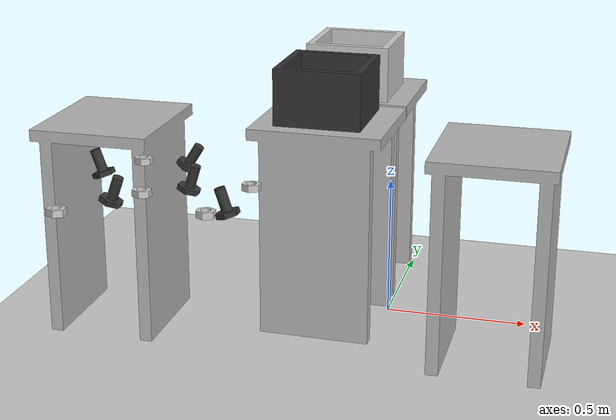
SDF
<sdf version="1.6">
 <world name="default">
  <light name="sun" type="directional">
   <pose>0 0 10 0 -0 0</pose>
   <diffuse>0.8 0.8 0.8 1</diffuse>
   <specular>0.1 0.1 0.1 1</specular>
   <attenuation>
    <range>1000</range>
    <constant>0.9</constant>
    <linear>0.01</linear>
    <quadratic>0.001</quadratic>
   </attenuation>
   <direction>-0.5 0.5 -1</direction>
  </light>
  <model name="ground_plane">
   <static>1</static>
   <link name="link">
    <collision name="collision">
     <geometry><plane><normal>0 0 1</normal><size>100 100</size></plane></geometry>
     <surface><friction><ode><mu>100</mu><mu2>50</mu2></ode></friction></surface>
    </collision>
    <visual name="visual">
     <cast_shadows>0</cast_shadows>
     <geometry><plane><normal>0 0 1</normal><size>100 100</size></plane></geometry>
     <material>
      <script><uri>file://media/materials/scripts/gazebo.material</uri><name>Gazebo/Grey</name></script>
     </material>
    </visual>
   </link>
  </model>
  <gravity>0 0 -9.8</gravity>
  <magnetic_field>6e-06 2.3e-05 -4.2e-05</magnetic_field>
  <atmosphere type="adiabatic"/>
  <physics name="default_physics" default="0" type="ode">
   <max_step_size>0.0005</max_step_size>
   <real_time_factor>1</real_time_factor>
   <real_time_update_rate>1000</real_time_update_rate>
  </physics>
  <scene><ambient>0.4 0.4 0.4 1</ambient><background>0.7 0.7 0.7 1</background><shadows>1</shadows></scene>
  <spherical_coordinates>
   <surface_model>EARTH_WGS84</surface_model>
   <latitude_deg>0</latitude_deg>
   <longitude_deg>0</longitude_deg>
   <elevation>0</elevation>
   <heading_deg>0</heading_deg>
  </spherical_coordinates>
  <model name="robot_stand_1">
   <static>1</static>
   <link name="link">
    <collision name="collision">
     <geometry><mesh><uri>model://robot_stand_v1/meshes/robot_stand_v1.dae</uri></mesh></geometry>
    </collision>
    <visual name="visual">
     <geometry><mesh><uri>model://robot_stand_v1/meshes/robot_stand_v1.dae</uri></mesh></geometry>
    </visual>
   </link>
   <pose>-0.192455 0.274857 0 0 0 -1.5736</pose>
  </model>
  <model name="robot_stand_0_clone">
   <static>1</static>
   <link name="link">
    <collision name="collision">
     <geometry><mesh><uri>model://robot_stand_v1/meshes/robot_stand_v1.dae</uri></mesh></geometry>
    </collision>
    <visual name="visual">
     <geometry><mesh><uri>model://robot_stand_v1/meshes/robot_stand_v1.dae</uri></mesh></geometry>
    </visual>
   </link>
   <pose>-0.912754 -0.326079 0 0 -0 0</pose>
  </model>
  <model name="robot_stand_0_clone_clone">
   <static>1</static>
   <link name="link">
    <collision name="collision">
     <geometry><mesh><uri>model://robot_stand_v1/meshes/robot_stand_v1.dae</uri></mesh></geometry>
    </collision>
    <visual name="visual">
     <geometry><mesh><uri>model://robot_stand_v1/meshes/robot_stand_v1.dae</uri></mesh></geometry>
    </visual>
   </link>
   <pose>-0.192455 -0.155606 0 0 0 -1.58626</pose>
  </model>
  <model name="robot_stand_0_clone_clone_clone">
   <static>1</static>
   <link name="link">
    <collision name="collision">
     <geometry><mesh><uri>model://robot_stand_v1/meshes/robot_stand_v1.dae</uri></mesh></geometry>
    </collision>
    <visual name="visual">
     <geometry><mesh><uri>model://robot_stand_v1/meshes/robot_stand_v1.dae</uri></mesh></geometry>
    </visual>
   </link>
   <pose>0.417197 -0.324665 0 0 -0 0</pose>
  </model>
  <model name="bin_1">
   <static>1</static>
   <link name="link">
    <inertial>
     <pose>0 0 0.3683 0 -0 0</pose>
     <mass>4.83076</mass>
     <inertia>
      <ixx>0.281534</ixx>
      <ixy>0</ixy>
      <ixz>0</ixz>
      <iyy>0.281534</iyy>
      <iyz>0</iyz>
      <izz>0.126223</izz>
     </inertia>
    </inertial>
    <visual name="visual">
     <geometry><mesh><uri>model://box_for_pro_white/meshes/box_for_pro.dae</uri></mesh></geometry>
     <material><ambient>0.8 0.8 0.8 1</ambient></material>
    </visual>
    <collision name="collision">
     <geometry><mesh><uri>model://box_for_pro_white/meshes/box_for_pro.dae</uri></mesh></geometry>
    </collision>
   </link>
   <pose>-0.189747 0.249853 0.85664 0 -0 0</pose>
  </model>
  <model name="bin_1_1">
   <static>1</static>
   <link name="link">
    <inertial>
     <pose>0 0 0.3683 0 -0 0</pose>
     <mass>4.83076</mass>
     <inertia>
      <ixx>0.281534</ixx>
      <ixy>0</ixy>
      <ixz>0</ixz>
      <iyy>0.281534</iyy>
      <iyz>0</iyz>
      <izz>0.126223</izz>
     </inertia>
    </inertial>
    <visual name="visual">
     <geometry><mesh><uri>model://box_for_pro/meshes/box_for_pro.dae</uri></mesh></geometry>
     <material><ambient>0.2 0.2 0.2 1</ambient></material>
    </visual>
    <collision name="collision">
     <geometry><mesh><uri>model://box_for_pro/meshes/box_for_pro.dae</uri></mesh></geometry>
    </collision>
   </link>
   <pose>-0.198861 -0.148758 0.856062 0 -0 0</pose>
  </model>
  <model name="bolt">
   <static>0</static>
   <link name="link">
    <inertial>
     <mass>0.2</mass>
     <inertia><ixx>1</ixx><ixy>0</ixy><ixz>0</ixz><iyy>1</iyy><iyz>0</iyz><izz>1</izz></inertia>
    </inertial>
    <visual name="visual">
     <geometry><mesh><uri>model://bolt/meshes/bolt.dae</uri></mesh></geometry>
     <material><ambient>0.2 0.2 0.2 1</ambient></material>
    </visual>
    <collision name="collision">
     <geometry><mesh><uri>model://bolt/meshes/bolt.dae</uri></mesh></geometry>
    </collision>
   </link>
   <pose>-0.195234 -1.24049 0.794577 1e-06 -0.319192 -0.003507</pose>
  </model>
  <model name="bolt_clone">
   <static>0</static>
   <link name="link">
    <inertial>
     <mass>0.2</mass>
     <inertia><ixx>1</ixx><ixy>0</ixy><ixz>0</ixz><iyy>1</iyy><iyz>0</iyz><izz>1</izz></inertia>
    </inertial>
    <visual name="visual">
     <geometry><mesh><uri>model://bolt/meshes/bolt.dae</uri></mesh></geometry>
     <material><ambient>0.2 0.2 0.2 1</ambient></material>
    </visual>
    <collision name="collision">
     <geometry><mesh><uri>model://bolt/meshes/bolt.dae</uri></mesh></geometry>
    </collision>
   </link>
   <pose>-0.650441 -1.00898 0.795124 1e-06 -0.341177 -0.003505</pose>
  </model>
  <model name="bolt_clone_0">
   <static>0</static>
   <link name="link">
    <inertial>
     <mass>0.2</mass>
     <inertia><ixx>1</ixx><ixy>0</ixy><ixz>0</ixz><iyy>1</iyy><iyz>0</iyz><izz>1</izz></inertia>
    </inertial>
    <visual name="visual">
     <geometry><mesh><uri>model://bolt/meshes/bolt.dae</uri></mesh></geometry>
     <material><ambient>0.2 0.2 0.2 1</ambient></material>
    </visual>
    <collision name="collision">
     <geometry><mesh><uri>model://bolt/meshes/bolt.dae</uri></mesh></geometry>
    </collision>
   </link>
   <pose>-0.363275 -1.07378 0.794065 1e-06 0.29899 -0.003494</pose>
  </model>
  <model name="bolt_clone_1">
   <static>0</static>
   <link name="link">
    <inertial>
     <mass>0.2</mass>
     <inertia><ixx>1</ixx><ixy>0</ixy><ixz>0</ixz><iyy>1</iyy><iyz>0</iyz><izz>1</izz></inertia>
    </inertial>
    <visual name="visual">
     <geometry><mesh><uri>model://bolt/meshes/bolt.dae</uri></mesh></geometry>
     <material><ambient>0.2 0.2 0.2 1</ambient></material>
    </visual>
    <collision name="collision">
     <geometry><mesh><uri>model://bolt/meshes/bolt.dae</uri></mesh></geometry>
    </collision>
   </link>
   <pose>-0.532031 -1.22733 0.795055 1e-06 0.338405 -0.003502</pose>
  </model>
  <model name="bolt_clone_2">
   <static>0</static>
   <link name="link">
    <inertial>
     <mass>0.2</mass>
     <inertia><ixx>1</ixx><ixy>0</ixy><ixz>0</ixz><iyy>1</iyy><iyz>0</iyz><izz>1</izz></inertia>
    </inertial>
    <visual name="visual">
     <geometry><mesh><uri>model://bolt/meshes/bolt.dae</uri></mesh></geometry>
     <material><ambient>0.2 0.2 0.2 1</ambient></material>
    </visual>
    <collision name="collision">
     <geometry><mesh><uri>model://bolt/meshes/bolt.dae</uri></mesh></geometry>
    </collision>
   </link>
   <pose>-0.433447 -0.891218 0.800026 1e-06 0.561094 -0.003501</pose>
  </model>
  <model name="nut">
   <static>0</static>
   <link name="link">
    <inertial>
     <mass>0.2</mass>
     <inertia><ixx>1</ixx><ixy>0</ixy><ixz>0</ixz><iyy>1</iyy><iyz>0</iyz><izz>1</izz></inertia>
    </inertial>
    <visual name="visual">
     <geometry><mesh><uri>model://nut/meshes/nut.dae</uri></mesh></geometry>
     <material><ambient>0.8 0.8 0.8 1</ambient></material>
    </visual>
    <collision name="collision">
     <geometry><mesh><uri>model://nut/meshes/nut.dae</uri></mesh></geometry>
    </collision>
   </link>
   <pose>-0.255856 -1.23964 0.784998 0 -3e-06 -3.8e-05</pose>
  </model>
  <model name="nut_clone">
   <static>0</static>
   <link name="link">
    <inertial>
     <mass>0.2</mass>
     <inertia><ixx>1</ixx><ixy>0</ixy><ixz>0</ixz><iyy>1</iyy><iyz>0</iyz><izz>1</izz></inertia>
    </inertial>
    <visual name="visual">
     <geometry><mesh><uri>model://nut/meshes/nut.dae</uri></mesh></geometry>
     <material><ambient>0.8 0.8 0.8 1</ambient></material>
    </visual>
    <collision name="collision">
     <geometry><mesh><uri>model://nut/meshes/nut.dae</uri></mesh></geometry>
    </collision>
   </link>
   <pose>-0.485253 -1.12403 0.785 4e-06 -9e-06 -3.8e-05</pose>
  </model>
  <model name="nut_clone_0">
   <static>0</static>
   <link name="link">
    <inertial>
     <mass>0.2</mass>
     <inertia><ixx>1</ixx><ixy>0</ixy><ixz>0</ixz><iyy>1</iyy><iyz>0</iyz><izz>1</izz></inertia>
    </inertial>
    <visual name="visual">
     <geometry><mesh><uri>model://nut/meshes/nut.dae</uri></mesh></geometry>
     <material><ambient>0.8 0.8 0.8 1</ambient></material>
    </visual>
    <collision name="collision">
     <geometry><mesh><uri>model://nut/meshes/nut.dae</uri></mesh></geometry>
    </collision>
   </link>
   <pose>-0.592524 -0.842668 0.785 2e-06 -8e-06 -3.8e-05</pose>
  </model>
  <model name="nut_clone_1">
   <static>0</static>
   <link name="link">
    <inertial>
     <mass>0.2</mass>
     <inertia><ixx>1</ixx><ixy>0</ixy><ixz>0</ixz><iyy>1</iyy><iyz>0</iyz><izz>1</izz></inertia>
    </inertial>
    <visual name="visual">
     <geometry><mesh><uri>model://nut/meshes/nut.dae</uri></mesh></geometry>
     <material><ambient>0.8 0.8 0.8 1</ambient></material>
    </visual>
    <collision name="collision">
     <geometry><mesh><uri>model://nut/meshes/nut.dae</uri></mesh></geometry>
    </collision>
   </link>
   <pose>-0.647217 -1.32965 0.784998 9e-06 -1.1e-05 -3.8e-05</pose>
  </model>
  <model name="nut_clone_2">
   <static>0</static>
   <link name="link">
    <inertial>
     <mass>0.2</mass>
     <inertia><ixx>1</ixx><ixy>0</ixy><ixz>0</ixz><iyy>1</iyy><iyz>0</iyz><izz>1</izz></inertia>
    </inertial>
    <visual name="visual">
     <geometry><mesh><uri>model://nut/meshes/nut.dae</uri></mesh></geometry>
     <material><ambient>0.8 0.8 0.8 1</ambient></material>
    </visual>
    <collision name="collision">
     <geometry><mesh><uri>model://nut/meshes/nut.dae</uri></mesh></geometry>
    </collision>
   </link>
   <pose>-0.206105 -0.995433 0.784998 2.1e-05 -1.4e-05 -3.8e-05</pose>
  </model>
 </world>
</sdf>
